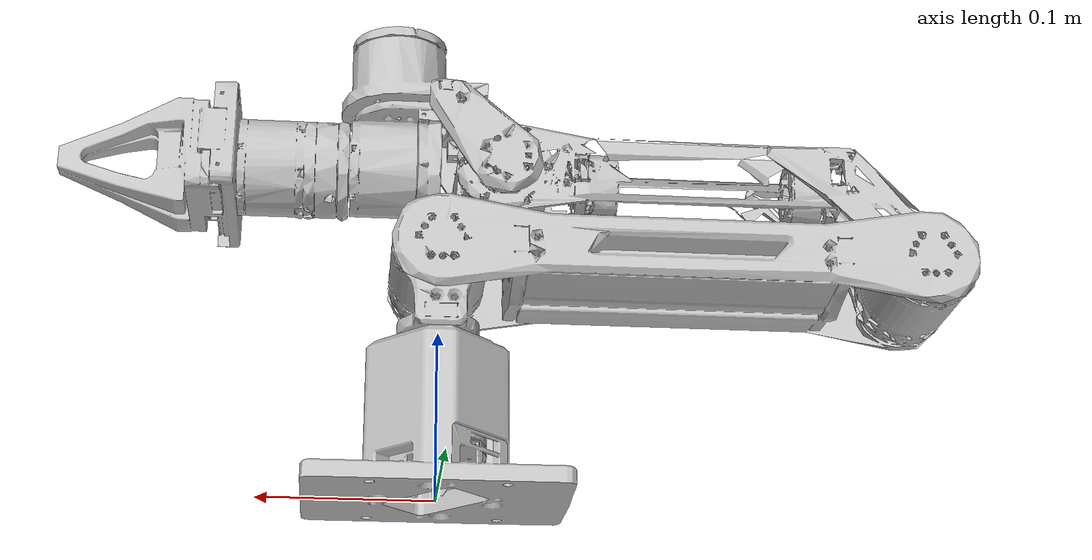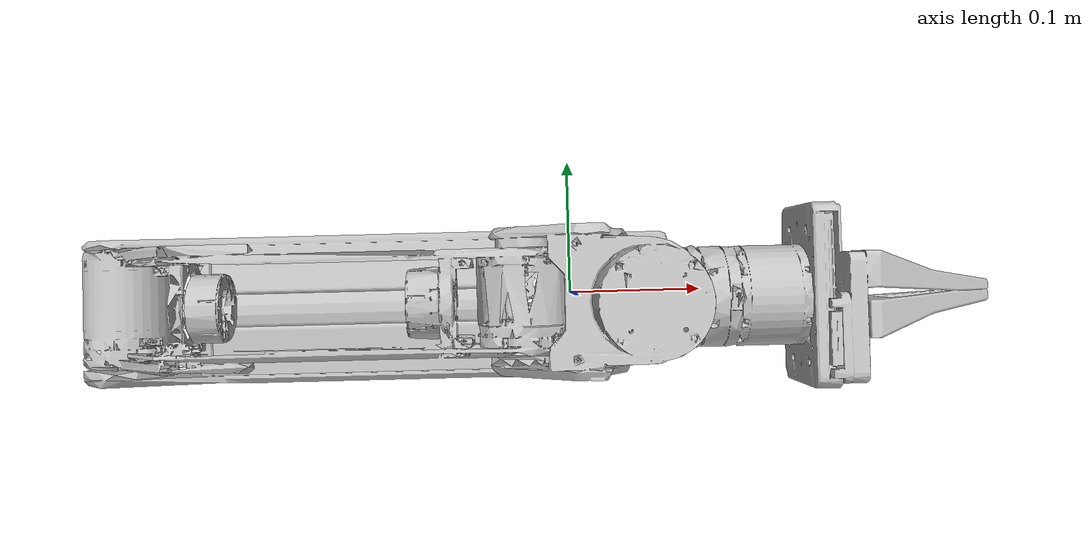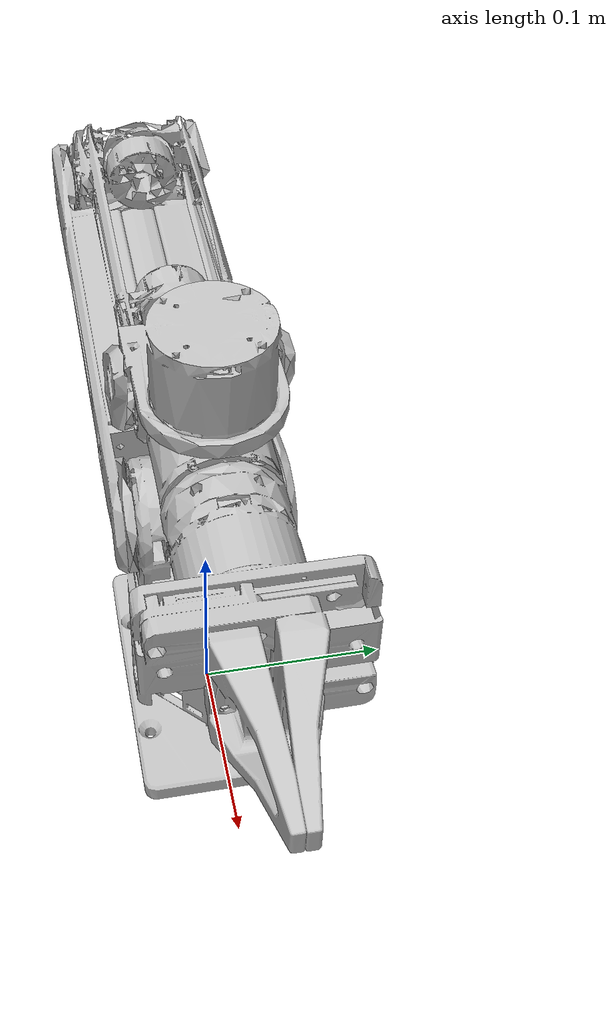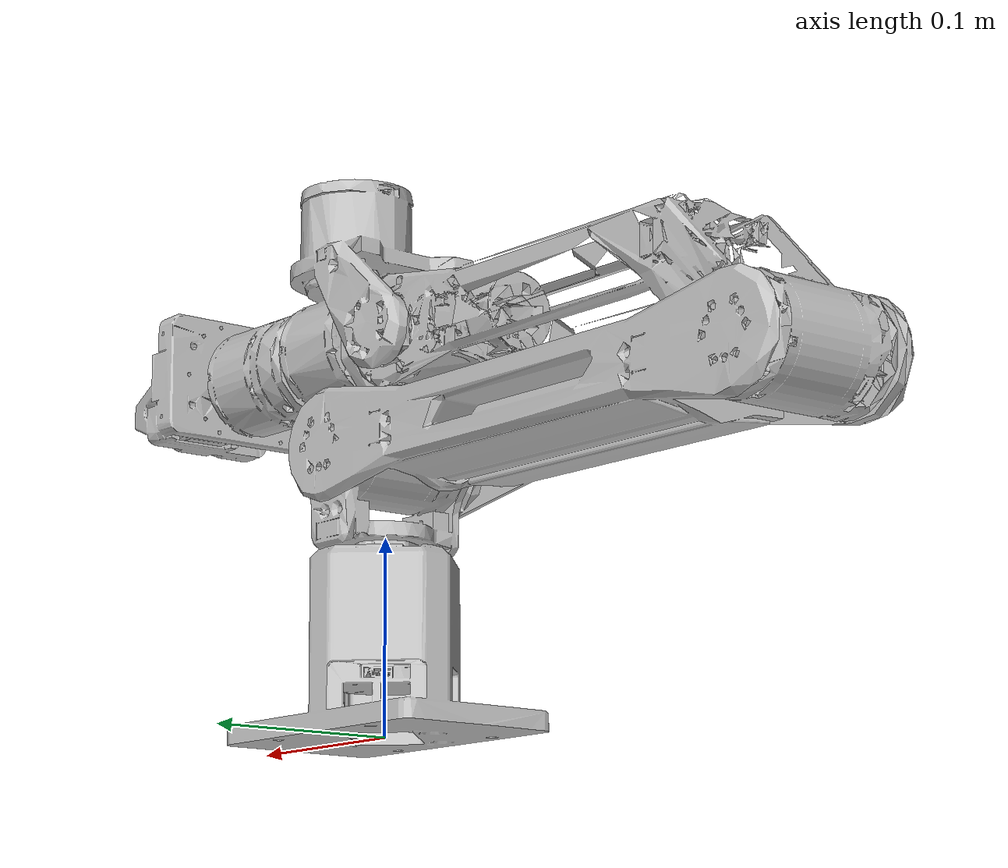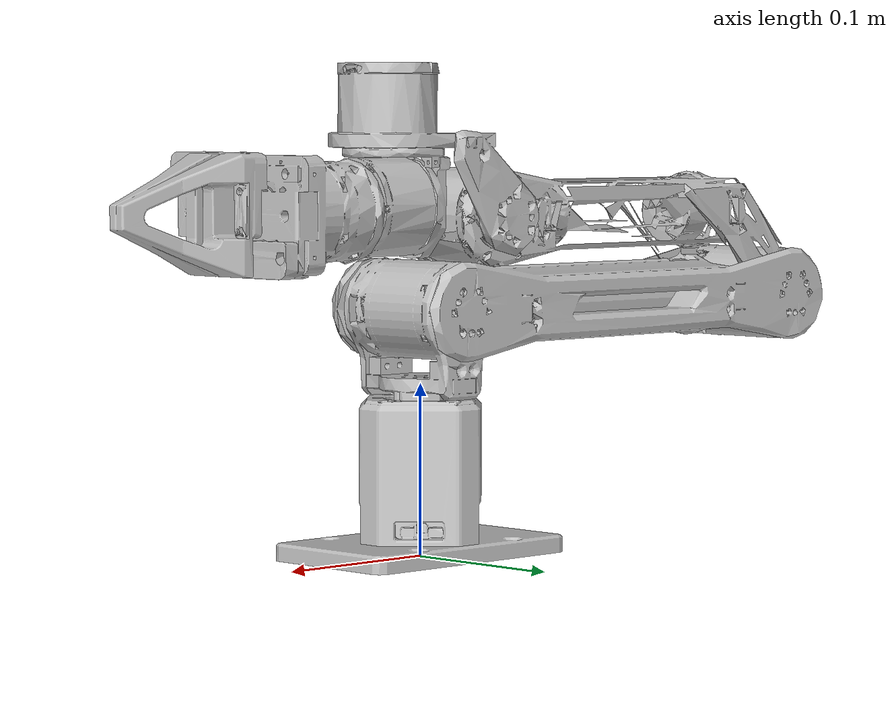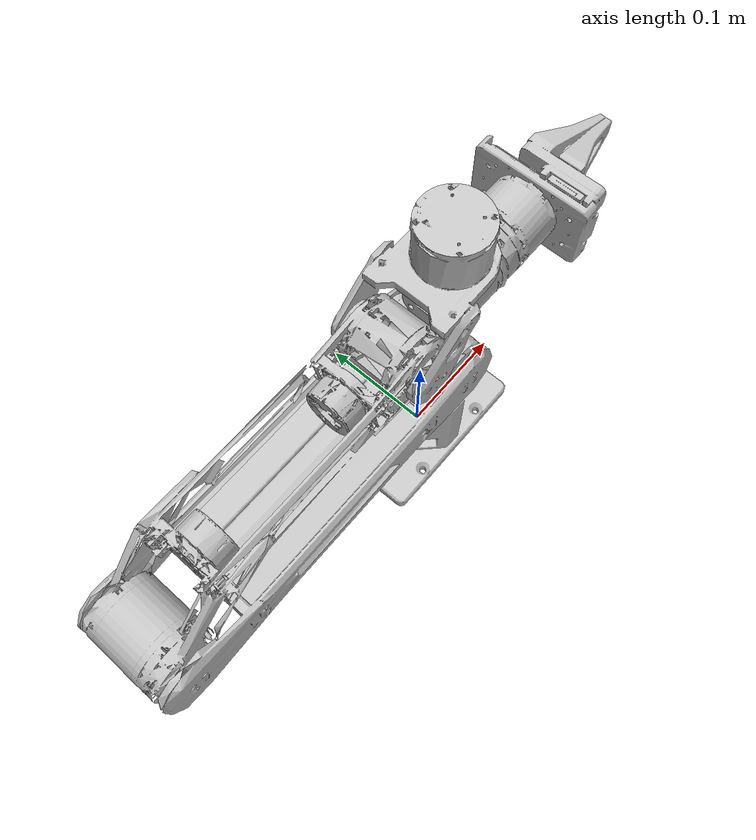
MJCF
<?xml version='1.0' encoding='utf-8'?>
<mujoco model="Ragtime_Willow_description">
  <compiler angle="radian" />

  <asset>
    <mesh name="base_link" content_type="model/stl" file="/home/kelvinlm/projects/libflorid-main/tools/willow_digital_twin/meshes/willow/base_link.STL" />
    <mesh name="link1" content_type="model/stl" file="/home/kelvinlm/projects/libflorid-main/tools/willow_digital_twin/meshes/willow/link1.STL" />
    <mesh name="link2" content_type="model/stl" file="/home/kelvinlm/projects/libflorid-main/tools/willow_digital_twin/meshes/willow/link2.STL" />
    <mesh name="link3" content_type="model/stl" file="/home/kelvinlm/projects/libflorid-main/tools/willow_digital_twin/meshes/willow/link3.STL" />
    <mesh name="link4" content_type="model/stl" file="/home/kelvinlm/projects/libflorid-main/tools/willow_digital_twin/meshes/willow/link4.STL" />
    <mesh name="link5" content_type="model/stl" file="/home/kelvinlm/projects/libflorid-main/tools/willow_digital_twin/meshes/willow/link5.STL" />
    <mesh name="link6" content_type="model/stl" file="/home/kelvinlm/projects/libflorid-main/tools/willow_digital_twin/meshes/willow/link6.STL" />
  </asset>

  <worldbody>
    <geom type="mesh" rgba="0.752941 0.752941 0.752941 1" mesh="base_link" />
    <body name="link1" pos="0 0 0.09675">
      <inertial pos="-2.2748E-06 0.00073389 0.078893" mass="0.56819" fullinertia="0.00017982 0.00020166 0.00017358 -1.9638E-08 8.5805E-08 -1.1201E-07" />
      <joint name="joint1" pos="0 0 0" axis="0 0 1" range="-3.14 3.14" />
      <geom type="mesh" rgba="0.752941 0.752941 0.752941 1" mesh="link1" />
      <body name="link2" pos="0 0 0.0465">
        <inertial pos="-0.146429197367629 7.06141895730483E-05 -0.00214503390408955" mass="0.658057861288159" fullinertia="0.000191741277625765 0.00332824225463193 0.00332934285358432 -1.6637749490411E-05 -1.02577958508963E-07 4.53602856427994E-07" />
        <joint name="joint2" pos="0 0 0" axis="0 1 0" range="0 3.14" />
        <geom type="mesh" rgba="0.752941 0.752941 0.752941 1" mesh="link2" />
        <body name="link3" pos="-0.285 -0.002625 0">
          <inertial pos="0.086654 -0.034195 -0.0039093" mass="1.0906" fullinertia="0.00036817 0.0014325 0.0015853 8.3666E-05 3.1221E-07 1.1456E-07" />
          <joint name="joint3" pos="0 0 0" axis="0 -1 0" range="0 3.14" />
          <geom type="mesh" rgba="0.752941 0.752941 0.752941 1" mesh="link3" />
          <body name="link4" pos="0.24818 0 0.0528">
            <inertial pos="0.039901 -0.040358 -0.003401" mass="0.29251" fullinertia="9.9889E-05 0.00013387 0.00011545 1.348E-05 1.5512E-08 5.4871E-08" />
            <joint name="joint4" pos="0 0 0" axis="0 1 0" range="-1.3 1.3" />
            <geom type="mesh" rgba="0.752941 0.752941 0.752941 1" mesh="link4" />
            <body name="link5" pos="0.062759 0.002625 0.041">
              <inertial pos="-0.00010374 -7.4797E-05 0.036478" mass="0.28445" fullinertia="9.7602E-05 7.6821E-05 9.1325E-05 1.5914E-08 -1.5744E-07 6.5174E-09" />
              <joint name="joint5" pos="0 0 0" axis="0 0 -1" range="-1.57 1.57" />
              <geom type="mesh" rgba="0.752941 0.752941 0.752941 1" mesh="link5" />
              <body name="link6" pos="0.18848 -7.8693e-05 -0.034078">
                <inertial pos="-1.4905E-05 6.8701E-06 0.077614" mass="0.34815" fullinertia="0.00010331 0.00013243 0.00017098 2.2994E-06 1.1921E-08 6.3131E-09" />
                <joint name="joint6" pos="0 0 0" axis="-1 0 0" range="-1.57 1.57" />
                <geom type="mesh" rgba="0.752941 0.752941 0.752941 1" mesh="link6" />
              </body>
            </body>
          </body>
        </body>
      </body>
    </body>
  </worldbody>
</mujoco>
